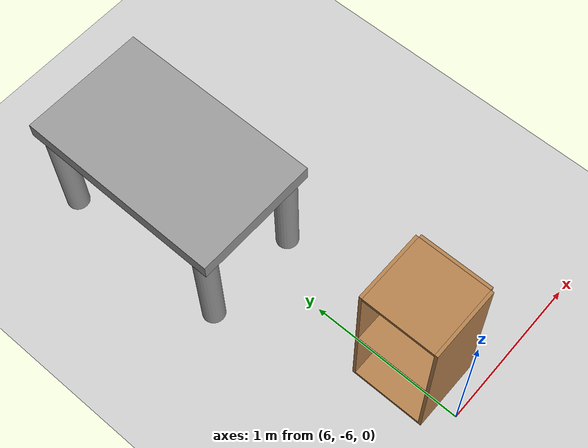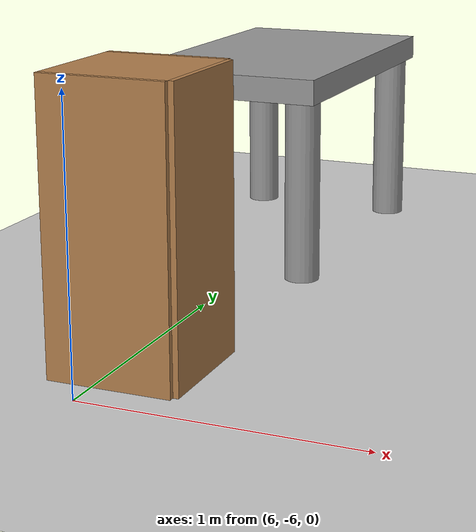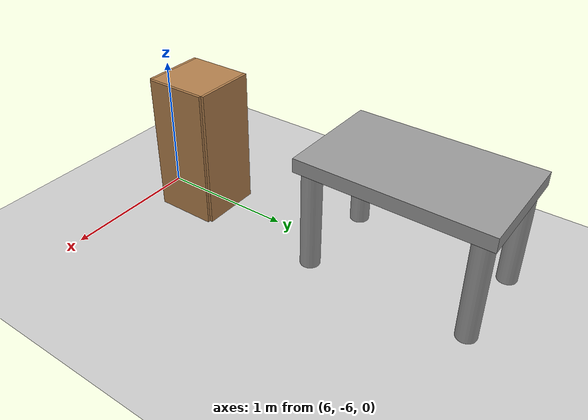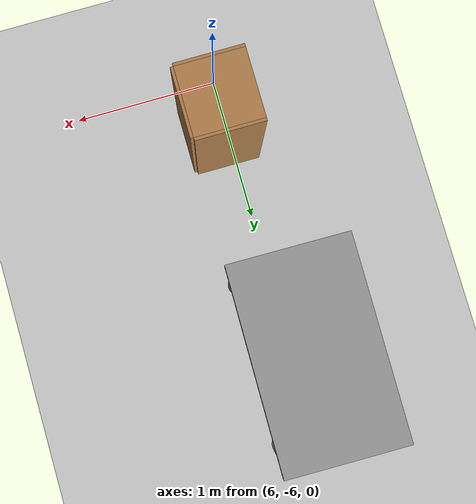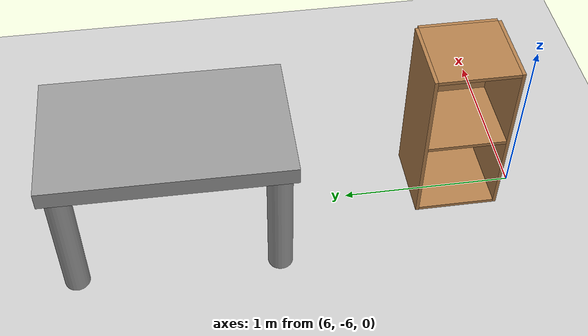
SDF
<sdf version="1.6">
 <world name="default">
  <model name="ground_plane">
   <static>1</static>
   <link name="link">
    <collision name="collision">
     <geometry><plane><normal>0 0 1</normal><size>100 100</size></plane></geometry>
     <surface>
      <contact><collide_bitmask>65535</collide_bitmask></contact>
      <friction><ode><mu>100</mu><mu2>50</mu2></ode></friction>
     </surface>
    </collision>
    <visual name="visual">
     <cast_shadows>0</cast_shadows>
     <geometry><plane><normal>0 0 1</normal><size>100 100</size></plane></geometry>
     <material>
      <script><uri>file://media/materials/scripts/gazebo.material</uri><name>Gazebo/Grey</name></script>
     </material>
    </visual>
   </link>
  </model>
  <model name="table_1">
   <link name="link_0">
    <inertial>
     <mass>1</mass>
     <inertia>
      <ixx>0.166667</ixx>
      <ixy>0</ixy>
      <ixz>0</ixz>
      <iyy>0.166667</iyy>
      <iyz>0</iyz>
      <izz>0.166667</izz>
     </inertia>
    </inertial>
    <pose>0 0 0.332 0 -0 0</pose>
    <visual name="visual">
     <geometry><box><size>0.8 1.33 0.1</size></box></geometry>
     <material>
      <lighting>1</lighting>
      <script><uri>file://media/materials/scripts/gazebo.material</uri><name>Gazebo/Grey</name></script>
      <shader type="pixel"><normal_map>__default__</normal_map></shader>
      <ambient>0.3 0.3 0.3 1</ambient>
      <diffuse>0.7 0.7 0.7 1</diffuse>
      <specular>0.01 0.01 0.01 1</specular>
      <emissive>0 0 0 1</emissive>
     </material>
    </visual>
    <collision name="collision">
     <geometry><box><size>0.8 1.33 0.1</size></box></geometry>
     <surface>
      <friction>
       <ode><mu>1</mu><mu2>1</mu2><fdir1>0 0 0</fdir1><slip1>0</slip1><slip2>0</slip2></ode>
       <torsional>
        <coefficient>1</coefficient>
        <patch_radius>0</patch_radius>
        <surface_radius>0</surface_radius>
        <use_patch_radius>1</use_patch_radius>
        <ode><slip>0</slip></ode>
       </torsional>
      </friction>
      <bounce><restitution_coefficient>0</restitution_coefficient><threshold>1e+06</threshold></bounce>
      <contact>
       <collide_without_contact>0</collide_without_contact>
       <collide_without_contact_bitmask>1</collide_without_contact_bitmask>
       <collide_bitmask>1</collide_bitmask>
       <ode>
        <soft_cfm>0</soft_cfm>
        <soft_erp>0.2</soft_erp>
        <kp>1e+13</kp>
        <kd>1</kd>
        <max_vel>0.01</max_vel>
        <min_depth>0</min_depth>
       </ode>
       <bullet>
        <split_impulse>1</split_impulse>
        <split_impulse_penetration_threshold>-0.01</split_impulse_penetration_threshold>
        <soft_cfm>0</soft_cfm>
        <soft_erp>0.2</soft_erp>
        <kp>1e+13</kp>
        <kd>1</kd>
       </bullet>
      </contact>
     </surface>
    </collision>
   </link>
   <link name="link_1">
    <inertial>
     <mass>1</mass>
     <inertia><ixx>0.145833</ixx><ixy>0</ixy><ixz>0</ixz><iyy>0.145833</iyy><iyz>0</iyz><izz>0.125</izz></inertia>
    </inertial>
    <pose>-0.32 0.57 -0.083 0 -0 0</pose>
    <visual name="visual">
     <geometry><cylinder><radius>0.07</radius><length>0.73</length></cylinder></geometry>
     <material>
      <lighting>1</lighting>
      <script><uri>file://media/materials/scripts/gazebo.material</uri><name>Gazebo/Grey</name></script>
      <shader type="pixel"><normal_map>__default__</normal_map></shader>
      <ambient>0.3 0.3 0.3 1</ambient>
      <diffuse>0.7 0.7 0.7 1</diffuse>
      <specular>0.01 0.01 0.01 1</specular>
      <emissive>0 0 0 1</emissive>
     </material>
    </visual>
    <collision name="collision">
     <geometry><cylinder><radius>0.07</radius><length>0.73</length></cylinder></geometry>
     <surface>
      <friction>
       <ode><mu>1</mu><mu2>1</mu2><fdir1>0 0 0</fdir1><slip1>0</slip1><slip2>0</slip2></ode>
       <torsional>
        <coefficient>1</coefficient>
        <patch_radius>0</patch_radius>
        <surface_radius>0</surface_radius>
        <use_patch_radius>1</use_patch_radius>
        <ode><slip>0</slip></ode>
       </torsional>
      </friction>
      <bounce><restitution_coefficient>0</restitution_coefficient><threshold>1e+06</threshold></bounce>
      <contact>
       <collide_without_contact>0</collide_without_contact>
       <collide_without_contact_bitmask>1</collide_without_contact_bitmask>
       <collide_bitmask>1</collide_bitmask>
       <ode>
        <soft_cfm>0</soft_cfm>
        <soft_erp>0.2</soft_erp>
        <kp>1e+13</kp>
        <kd>1</kd>
        <max_vel>0.01</max_vel>
        <min_depth>0</min_depth>
       </ode>
       <bullet>
        <split_impulse>1</split_impulse>
        <split_impulse_penetration_threshold>-0.01</split_impulse_penetration_threshold>
        <soft_cfm>0</soft_cfm>
        <soft_erp>0.2</soft_erp>
        <kp>1e+13</kp>
        <kd>1</kd>
       </bullet>
      </contact>
     </surface>
    </collision>
   </link>
   <link name="link_1_clone">
    <inertial>
     <mass>1</mass>
     <inertia><ixx>0.145833</ixx><ixy>0</ixy><ixz>0</ixz><iyy>0.145833</iyy><iyz>0</iyz><izz>0.125</izz></inertia>
    </inertial>
    <pose>-0.32 -0.57 -0.083 0 -0 0</pose>
    <visual name="visual">
     <geometry><cylinder><radius>0.07</radius><length>0.73</length></cylinder></geometry>
     <material>
      <lighting>1</lighting>
      <script><uri>file://media/materials/scripts/gazebo.material</uri><name>Gazebo/Grey</name></script>
      <shader type="pixel"><normal_map>__default__</normal_map></shader>
      <ambient>0.3 0.3 0.3 1</ambient>
      <diffuse>0.7 0.7 0.7 1</diffuse>
      <specular>0.01 0.01 0.01 1</specular>
      <emissive>0 0 0 1</emissive>
     </material>
    </visual>
    <collision name="collision">
     <geometry><cylinder><radius>0.07</radius><length>0.73</length></cylinder></geometry>
     <surface>
      <friction>
       <ode><mu>1</mu><mu2>1</mu2><fdir1>0 0 0</fdir1><slip1>0</slip1><slip2>0</slip2></ode>
       <torsional>
        <coefficient>1</coefficient>
        <patch_radius>0</patch_radius>
        <surface_radius>0</surface_radius>
        <use_patch_radius>1</use_patch_radius>
        <ode><slip>0</slip></ode>
       </torsional>
      </friction>
      <bounce><restitution_coefficient>0</restitution_coefficient><threshold>1e+06</threshold></bounce>
      <contact>
       <collide_without_contact>0</collide_without_contact>
       <collide_without_contact_bitmask>1</collide_without_contact_bitmask>
       <collide_bitmask>1</collide_bitmask>
       <ode>
        <soft_cfm>0</soft_cfm>
        <soft_erp>0.2</soft_erp>
        <kp>1e+13</kp>
        <kd>1</kd>
        <max_vel>0.01</max_vel>
        <min_depth>0</min_depth>
       </ode>
       <bullet>
        <split_impulse>1</split_impulse>
        <split_impulse_penetration_threshold>-0.01</split_impulse_penetration_threshold>
        <soft_cfm>0</soft_cfm>
        <soft_erp>0.2</soft_erp>
        <kp>1e+13</kp>
        <kd>1</kd>
       </bullet>
      </contact>
     </surface>
    </collision>
   </link>
   <link name="link_1_clone_0">
    <inertial>
     <mass>1</mass>
     <inertia><ixx>0.145833</ixx><ixy>0</ixy><ixz>0</ixz><iyy>0.145833</iyy><iyz>0</iyz><izz>0.125</izz></inertia>
    </inertial>
    <pose>0.32 0.57 -0.083 0 -0 0</pose>
    <visual name="visual">
     <geometry><cylinder><radius>0.07</radius><length>0.73</length></cylinder></geometry>
     <material>
      <lighting>1</lighting>
      <script><uri>file://media/materials/scripts/gazebo.material</uri><name>Gazebo/Grey</name></script>
      <shader type="pixel"><normal_map>__default__</normal_map></shader>
      <ambient>0.3 0.3 0.3 1</ambient>
      <diffuse>0.7 0.7 0.7 1</diffuse>
      <specular>0.01 0.01 0.01 1</specular>
      <emissive>0 0 0 1</emissive>
     </material>
    </visual>
    <collision name="collision">
     <geometry><cylinder><radius>0.07</radius><length>0.73</length></cylinder></geometry>
     <surface>
      <friction>
       <ode><mu>1</mu><mu2>1</mu2><fdir1>0 0 0</fdir1><slip1>0</slip1><slip2>0</slip2></ode>
       <torsional>
        <coefficient>1</coefficient>
        <patch_radius>0</patch_radius>
        <surface_radius>0</surface_radius>
        <use_patch_radius>1</use_patch_radius>
        <ode><slip>0</slip></ode>
       </torsional>
      </friction>
      <bounce><restitution_coefficient>0</restitution_coefficient><threshold>1e+06</threshold></bounce>
      <contact>
       <collide_without_contact>0</collide_without_contact>
       <collide_without_contact_bitmask>1</collide_without_contact_bitmask>
       <collide_bitmask>1</collide_bitmask>
       <ode>
        <soft_cfm>0</soft_cfm>
        <soft_erp>0.2</soft_erp>
        <kp>1e+13</kp>
        <kd>1</kd>
        <max_vel>0.01</max_vel>
        <min_depth>0</min_depth>
       </ode>
       <bullet>
        <split_impulse>1</split_impulse>
        <split_impulse_penetration_threshold>-0.01</split_impulse_penetration_threshold>
        <soft_cfm>0</soft_cfm>
        <soft_erp>0.2</soft_erp>
        <kp>1e+13</kp>
        <kd>1</kd>
       </bullet>
      </contact>
     </surface>
    </collision>
   </link>
   <link name="link_1_clone_1">
    <inertial>
     <mass>1</mass>
     <inertia><ixx>0.145833</ixx><ixy>0</ixy><ixz>0</ixz><iyy>0.145833</iyy><iyz>0</iyz><izz>0.125</izz></inertia>
    </inertial>
    <pose>0.32 -0.57 -0.083 0 -0 0</pose>
    <visual name="visual">
     <geometry><cylinder><radius>0.07</radius><length>0.73</length></cylinder></geometry>
     <material>
      <lighting>1</lighting>
      <script><uri>file://media/materials/scripts/gazebo.material</uri><name>Gazebo/Grey</name></script>
      <shader type="pixel"><normal_map>__default__</normal_map></shader>
      <ambient>0.3 0.3 0.3 1</ambient>
      <diffuse>0.7 0.7 0.7 1</diffuse>
      <specular>0.01 0.01 0.01 1</specular>
      <emissive>0 0 0 1</emissive>
     </material>
    </visual>
    <collision name="collision">
     <geometry><cylinder><radius>0.07</radius><length>0.73</length></cylinder></geometry>
     <surface>
      <friction>
       <ode><mu>1</mu><mu2>1</mu2><fdir1>0 0 0</fdir1><slip1>0</slip1><slip2>0</slip2></ode>
       <torsional>
        <coefficient>1</coefficient>
        <patch_radius>0</patch_radius>
        <surface_radius>0</surface_radius>
        <use_patch_radius>1</use_patch_radius>
        <ode><slip>0</slip></ode>
       </torsional>
      </friction>
      <bounce><restitution_coefficient>0</restitution_coefficient><threshold>1e+06</threshold></bounce>
      <contact>
       <collide_without_contact>0</collide_without_contact>
       <collide_without_contact_bitmask>1</collide_without_contact_bitmask>
       <collide_bitmask>1</collide_bitmask>
       <ode>
        <soft_cfm>0</soft_cfm>
        <soft_erp>0.2</soft_erp>
        <kp>1e+13</kp>
        <kd>1</kd>
        <max_vel>0.01</max_vel>
        <min_depth>0</min_depth>
       </ode>
       <bullet>
        <split_impulse>1</split_impulse>
        <split_impulse_penetration_threshold>-0.01</split_impulse_penetration_threshold>
        <soft_cfm>0</soft_cfm>
        <soft_erp>0.2</soft_erp>
        <kp>1e+13</kp>
        <kd>1</kd>
       </bullet>
      </contact>
     </surface>
    </collision>
   </link>
   <joint name="link_0_JOINT_0" type="fixed">
    <parent>link_0</parent>
    <child>link_1_clone</child>
    <physics>
     <ode><limit><cfm>0</cfm><erp>0.2</erp></limit><suspension><cfm>0</cfm><erp>0.2</erp></suspension></ode>
    </physics>
   </joint>
   <joint name="link_0_JOINT_1" type="fixed">
    <parent>link_0</parent>
    <child>link_1</child>
    <physics>
     <ode><limit><cfm>0</cfm><erp>0.2</erp></limit><suspension><cfm>0</cfm><erp>0.2</erp></suspension></ode>
    </physics>
   </joint>
   <joint name="link_0_JOINT_2" type="fixed">
    <parent>link_0</parent>
    <child>link_1_clone_1</child>
    <physics>
     <ode><limit><cfm>0</cfm><erp>0.2</erp></limit><suspension><cfm>0</cfm><erp>0.2</erp></suspension></ode>
    </physics>
   </joint>
   <joint name="link_0_JOINT_3" type="fixed">
    <parent>link_0</parent>
    <child>link_1_clone_0</child>
    <physics>
     <ode><limit><cfm>0</cfm><erp>0.2</erp></limit><suspension><cfm>0</cfm><erp>0.2</erp></suspension></ode>
    </physics>
   </joint>
   <static>0</static>
   <pose>5.9144 -3.9811 0.447998 4e-06 3e-06 -0.009127</pose>
  </model>
  <model name="cabinet">
   <static>1</static>
   <link name="cabinet_bottom_plate">
    <inertial>
     <pose>0 0 -1 0 -0 0</pose>
     <inertia><ixx>2.05</ixx><ixy>0</ixy><ixz>0</ixz><iyy>2.05</iyy><iyz>0</iyz><izz>2.05</izz></inertia>
     <mass>25</mass>
    </inertial>
    <collision name="cabinet_bottom_plate_geom">
     <pose>0 0 0.01 0 -0 0</pose>
     <geometry><box><size>0.45 0.45 0.02</size></box></geometry>
    </collision>
    <visual name="cabinet_bottom_plate_geom_visual">
     <pose>0 0 0.01 0 -0 0</pose>
     <geometry><box><size>0.45 0.45 0.02</size></box></geometry>
     <material>
      <script><uri>file://media/materials/scripts/gazebo.material</uri><name>Gazebo/Wood</name></script>
     </material>
    </visual>
    <collision name="cabinet_bottom_plate_geom_cabinet_back_plate">
     <pose>0.235 0 0.51 0 -0 0</pose>
     <geometry><box><size>0.02 0.45 1.02</size></box></geometry>
    </collision>
    <visual name="cabinet_bottom_plate_geom_cabinet_back_plate_visual">
     <pose>0.235 0 0.51 0 -0 0</pose>
     <geometry><box><size>0.02 0.45 1.02</size></box></geometry>
     <material>
      <script><uri>file://media/materials/scripts/gazebo.material</uri><name>Gazebo/Wood</name></script>
     </material>
    </visual>
    <collision name="cabinet_bottom_plate_geom_cabinet_left_plate">
     <pose>0 0.235 0.51 0 -0 0</pose>
     <geometry><box><size>0.45 0.02 1.02</size></box></geometry>
    </collision>
    <visual name="cabinet_bottom_plate_geom_cabinet_left_plate_visual">
     <pose>0 0.235 0.51 0 -0 0</pose>
     <geometry><box><size>0.45 0.02 1.02</size></box></geometry>
     <material>
      <script><uri>file://media/materials/scripts/gazebo.material</uri><name>Gazebo/Wood</name></script>
     </material>
    </visual>
    <collision name="cabinet_bottom_plate_geom_cabinet_middle_plate">
     <pose>0 0 0.51 0 -0 0</pose>
     <geometry><box><size>0.45 0.45 0.02</size></box></geometry>
    </collision>
    <visual name="cabinet_bottom_plate_geom_cabinet_middle_plate_visual">
     <pose>0 0 0.51 0 -0 0</pose>
     <geometry><box><size>0.45 0.45 0.02</size></box></geometry>
     <material>
      <script><uri>file://media/materials/scripts/gazebo.material</uri><name>Gazebo/Wood</name></script>
     </material>
    </visual>
    <collision name="cabinet_bottom_plate_geom_cabinet_right_plate">
     <pose>0 -0.235 0.51 0 -0 0</pose>
     <geometry><box><size>0.45 0.02 1.02</size></box></geometry>
    </collision>
    <visual name="cabinet_bottom_plate_geom_cabinet_right_plate_visual">
     <pose>0 -0.235 0.51 0 -0 0</pose>
     <geometry><box><size>0.45 0.02 1.02</size></box></geometry>
     <material>
      <script><uri>file://media/materials/scripts/gazebo.material</uri><name>Gazebo/Wood</name></script>
     </material>
    </visual>
    <collision name="cabinet_bottom_plate_geom_cabinet_top_plate">
     <pose>0 0 1.01 0 -0 0</pose>
     <geometry><box><size>0.45 0.45 0.02</size></box></geometry>
    </collision>
    <visual name="cabinet_bottom_plate_geom_cabinet_top_plate_visual">
     <pose>0 0 1.01 0 -0 0</pose>
     <geometry><box><size>0.45 0.45 0.02</size></box></geometry>
     <material>
      <script><uri>file://media/materials/scripts/gazebo.material</uri><name>Gazebo/Wood</name></script>
     </material>
    </visual>
   </link>
   <pose>6.05842 -5.63692 0 0 -0 0</pose>
  </model>
 </world>
</sdf>
